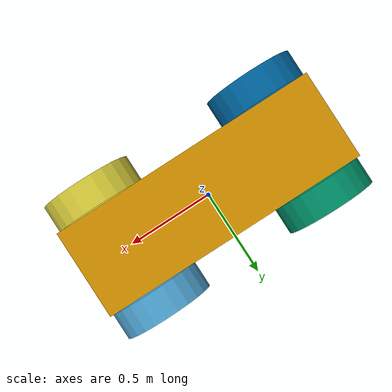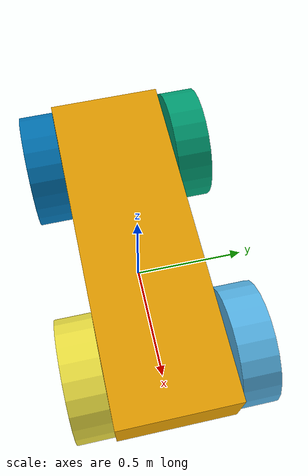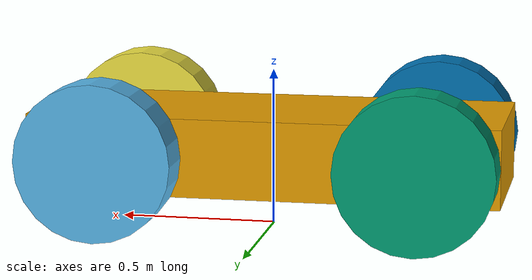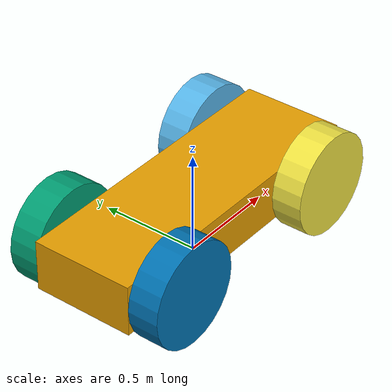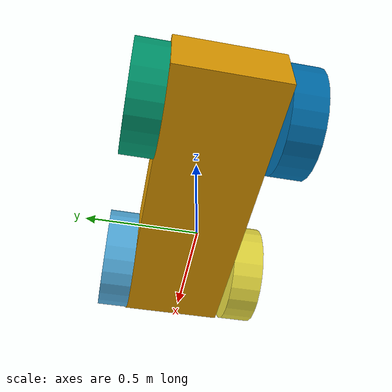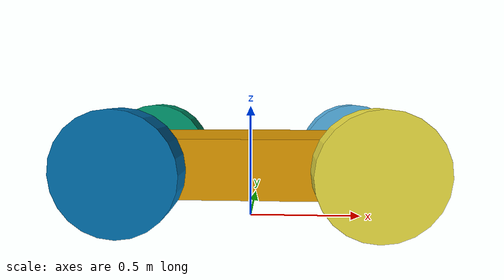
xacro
<?xml version="1.0"?>
<robot xmlns:xacro="http://www.ros.org/wiki/xacro" name="botV1">

  <!--central box properties-->
  <xacro:property name="depthBox" value="1.5" />
  <xacro:property name="widthBox" value=".5" />
  <xacro:property name="heightBox" value=".25" />
  <xacro:property name="densityBox" value="100" />

  <!--wheel properties-->
  <xacro:property name="radiusCylinder" value=".25" />
  <xacro:property name="lengthCylinder" value=".15" />
  <xacro:property name="densityCylinder" value="100" />

  <!--creates central body to which wheels are linked to-->
  <link name="base_link">
    <visual>
      <geometry>
        <box size="${depthBox} ${widthBox} ${heightBox}"/>
      </geometry>
      <origin rpy="0 0 0" xyz="0 0 ${heightBox}"/>
    </visual>

    <collision>
      <geometry>
        <box size="${depthBox} ${widthBox} ${heightBox}"/>
      </geometry>
      <origin rpy="0 0 0" xyz="0 0 ${heightBox}"/>
    </collision>

    <inertial>
      <mass value="${depthBox}*${widthBox}*${heightBox}*${densityBox}"/>
      <inertia
        ixx="${(depthBox*widthBox*heightBox*densityBox)/12*((heightBox*heightBox)+(depthBox*depthBox))}"
        ixy="0"
        ixz="0"
        iyy="${(depthBox*widthBox*heightBox*densityBox)/12*((widthBox*widthBox)+(depthBox*depthBox))}"
        iyz="0"
        izz="${(depthBox*widthBox*heightBox*densityBox)/12*((widthBox*widthBox)+(heightBox*heightBox))}"/>
    </inertial>
  </link>

  <!--algorithm for creating wheels and joints-->
  <xacro:macro name="wheel" params="prefix x y">
      <link name="${prefix}Wheel">
        <visual>
          <geometry>
          	<cylinder length="${lengthCylinder}" radius="${radiusCylinder}"/>
          </geometry>
          <origin rpy="1.5707 0 0" xyz="0 0 0"/>
        </visual>

        <collision>
          <geometry>
            <cylinder length="${lengthCylinder}" radius="${radiusCylinder}"/>
          </geometry>
          <origin rpy="1.5707 0 0" xyz="0 0 0"/>
        </collision>

     <inertial>
          <mass value="${(radiusCylinder*radiusCylinder)*3.1415}"/>
          <inertia
            ixx="${(((radiusCylinder*radiusCylinder)*3.1415)/12)*(3*(radiusCylinder*radiusCylinder)+(lengthCylinder*lengthCylinder))}"
            ixy="0"
            ixz="0"
            iyy="${(((radiusCylinder*radiusCylinder)*3.1415)/12)*(3*(radiusCylinder*radiusCylinder)+(lengthCylinder*lengthCylinder))}"
            iyz="0"
            izz="${(((radiusCylinder*radiusCylinder)*3.1415)/2)*(radiusCylinder*radiusCylinder)}"/>
        </inertial>
      </link>

      <joint name="${prefix}WheelJoint" type="continuous">
        <parent link="base_link"/>
        <child link="${prefix}Wheel"/>
        <axis xyz="0 ${((widthBox/2)+(lengthCylinder/2))*y} 0"/>
        <origin xyz="${((depthBox/2)-radiusCylinder)*x} ${((widthBox/2)+(lengthCylinder/2))*y} ${heightBox}"/>
      </joint>
  </xacro:macro>

  <!--Create wheels and joint to the main body using above algorithm-->
  <xacro:wheel prefix="rightFront" x="1" y="1"/>
  <xacro:wheel prefix="leftFront" x="-1" y="1"/>
  <xacro:wheel prefix="rightBack" x="1" y="-1"/>
  <xacro:wheel prefix="leftBack" x="-1" y="-1"/>

</robot>
